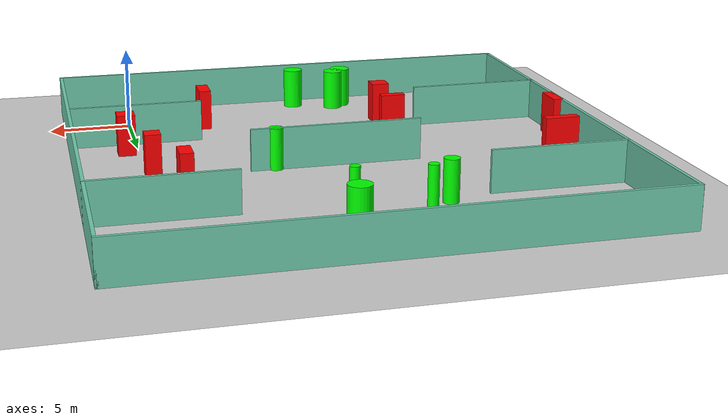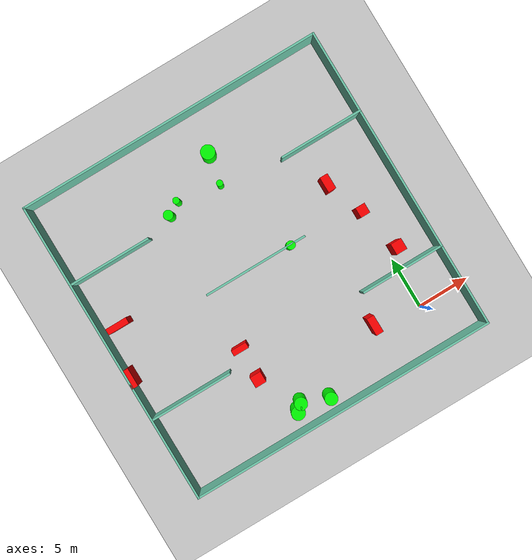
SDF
<sdf version="1.7">
 <world name="default">
  <light name="sun" type="directional">
   <pose>0 0 10 0 -0 0</pose>
   <diffuse>0.8 0.8 0.8 1</diffuse>
   <specular>0.2 0.2 0.2 1</specular>
   <attenuation>
    <range>1000</range>
    <constant>0.9</constant>
    <linear>0.01</linear>
    <quadratic>0.001</quadratic>
   </attenuation>
   <direction>-0.5 0.1 -0.9</direction>
   <spot><inner_angle>0</inner_angle><outer_angle>0</outer_angle><falloff>0</falloff></spot>
  </light>
  <model name="ground_plane">
   <static>1</static>
   <link name="link">
    <collision name="collision">
     <geometry><plane><normal>0 0 1</normal><size>100 100</size></plane></geometry>
     <surface>
      <contact><collide_bitmask>65535</collide_bitmask></contact>
      <friction><ode><mu>100</mu><mu2>50</mu2></ode></friction>
     </surface>
    </collision>
    <visual name="visual">
     <cast_shadows>0</cast_shadows>
     <geometry><plane><normal>0 0 1</normal><size>100 100</size></plane></geometry>
     <material>
      <script><uri>file://media/materials/scripts/gazebo.material</uri><name>Gazebo/Grey</name></script>
     </material>
    </visual>
   </link>
  </model>
  <gravity>0 0 -9.8</gravity>
  <magnetic_field>6e-06 2.3e-05 -4.2e-05</magnetic_field>
  <atmosphere type="adiabatic"/>
  <physics type="ode">
   <max_step_size>0.001</max_step_size>
   <real_time_factor>1</real_time_factor>
   <real_time_update_rate>1000</real_time_update_rate>
  </physics>
  <scene><ambient>0.4 0.4 0.4 1</ambient><background>0.7 0.7 0.7 1</background><shadows>1</shadows></scene>
  <spherical_coordinates>
   <surface_model>EARTH_WGS84</surface_model>
   <latitude_deg>0</latitude_deg>
   <longitude_deg>0</longitude_deg>
   <elevation>0</elevation>
   <heading_deg>0</heading_deg>
  </spherical_coordinates>
  <model name="my_base_walls">
   <link name="Wall_10">
    <collision name="Wall_10_Collision">
     <geometry><box><size>8.2 0.2 2.5</size></box></geometry>
     <pose>0 0 1.25 0 -0 0</pose>
    </collision>
    <visual name="Wall_10_Visual">
     <pose>0 0 1.25 0 -0 0</pose>
     <geometry><box><size>8.2 0.2 2.5</size></box></geometry>
     <material>
      <script><uri>file://media/materials/scripts/gazebo.material</uri><name>Gazebo/Grey</name></script>
      <ambient>0.435294 0.796078 0.67451 1</ambient>
     </material>
     <meta><layer>0</layer></meta>
    </visual>
    <pose>-11 -7 0 0 -0 0</pose>
   </link>
   <link name="Wall_12">
    <collision name="Wall_12_Collision">
     <geometry><box><size>8.2 0.2 2.5</size></box></geometry>
     <pose>0 0 1.25 0 -0 0</pose>
    </collision>
    <visual name="Wall_12_Visual">
     <pose>0 0 1.25 0 -0 0</pose>
     <geometry><box><size>8.2 0.2 2.5</size></box></geometry>
     <material>
      <script><uri>file://media/materials/scripts/gazebo.material</uri><name>Gazebo/Grey</name></script>
      <ambient>0.435294 0.796078 0.67451 1</ambient>
     </material>
     <meta><layer>0</layer></meta>
    </visual>
    <pose>-11 7 0 0 -0 0</pose>
   </link>
   <link name="Wall_14">
    <collision name="Wall_14_Collision">
     <geometry><box><size>8.2 0.2 2.5</size></box></geometry>
     <pose>0 0 1.25 0 -0 0</pose>
    </collision>
    <visual name="Wall_14_Visual">
     <pose>0 0 1.25 0 -0 0</pose>
     <geometry><box><size>8.2 0.2 2.5</size></box></geometry>
     <material>
      <script><uri>file://media/materials/scripts/gazebo.material</uri><name>Gazebo/Grey</name></script>
      <ambient>0.435294 0.796078 0.67451 1</ambient>
     </material>
     <meta><layer>0</layer></meta>
    </visual>
    <pose>11 7 0 0 -0 3.14159</pose>
   </link>
   <link name="Wall_16">
    <collision name="Wall_16_Collision">
     <geometry><box><size>10.2 0.2 2.5</size></box></geometry>
     <pose>0 0 1.25 0 -0 0</pose>
    </collision>
    <visual name="Wall_16_Visual">
     <pose>0 0 1.25 0 -0 0</pose>
     <geometry><box><size>10.2 0.2 2.5</size></box></geometry>
     <material>
      <script><uri>file://media/materials/scripts/gazebo.material</uri><name>Gazebo/Grey</name></script>
      <ambient>0.435294 0.796078 0.67451 1</ambient>
     </material>
     <meta><layer>0</layer></meta>
    </visual>
    <pose>0 0 0 0 -0 3.14159</pose>
   </link>
   <link name="Wall_2">
    <collision name="Wall_2_Collision">
     <geometry><box><size>30.2 0.2 2.5</size></box></geometry>
     <pose>0 0 1.25 0 -0 0</pose>
    </collision>
    <visual name="Wall_2_Visual">
     <pose>0 0 1.25 0 -0 0</pose>
     <geometry><box><size>30.2 0.2 2.5</size></box></geometry>
     <material>
      <script><uri>file://media/materials/scripts/gazebo.material</uri><name>Gazebo/Grey</name></script>
      <ambient>0.435294 0.796078 0.67451 1</ambient>
     </material>
     <meta><layer>0</layer></meta>
    </visual>
    <pose>0 -15 0 0 -0 3.14159</pose>
   </link>
   <link name="Wall_3">
    <collision name="Wall_3_Collision">
     <geometry><box><size>30.2 0.2 2.5</size></box></geometry>
     <pose>0 0 1.25 0 -0 0</pose>
    </collision>
    <visual name="Wall_3_Visual">
     <pose>0 0 1.25 0 -0 0</pose>
     <geometry><box><size>30.2 0.2 2.5</size></box></geometry>
     <material>
      <script><uri>file://media/materials/scripts/gazebo.material</uri><name>Gazebo/Grey</name></script>
      <ambient>0.435294 0.796078 0.67451 1</ambient>
     </material>
     <meta><layer>0</layer></meta>
    </visual>
    <pose>-15 0 0 0 -0 1.5708</pose>
   </link>
   <link name="Wall_4">
    <collision name="Wall_4_Collision">
     <geometry><box><size>30.2 0.2 2.5</size></box></geometry>
     <pose>0 0 1.25 0 -0 0</pose>
    </collision>
    <visual name="Wall_4_Visual">
     <pose>0 0 1.25 0 -0 0</pose>
     <geometry><box><size>30.2 0.2 2.5</size></box></geometry>
     <material>
      <script><uri>file://media/materials/scripts/gazebo.material</uri><name>Gazebo/Grey</name></script>
      <ambient>0.435294 0.796078 0.67451 1</ambient>
     </material>
     <meta><layer>0</layer></meta>
    </visual>
    <pose>0 15 0 0 -0 0</pose>
   </link>
   <link name="Wall_6">
    <collision name="Wall_6_Collision">
     <geometry><box><size>30.2 0.2 2.5</size></box></geometry>
     <pose>0 0 1.25 0 -0 0</pose>
    </collision>
    <visual name="Wall_6_Visual">
     <pose>0 0 1.25 0 -0 0</pose>
     <geometry><box><size>30.2 0.2 2.5</size></box></geometry>
     <material>
      <script><uri>file://media/materials/scripts/gazebo.material</uri><name>Gazebo/Grey</name></script>
      <ambient>0.435294 0.796078 0.67451 1</ambient>
     </material>
     <meta><layer>0</layer></meta>
    </visual>
    <pose>15 0 0 0 -0 1.5708</pose>
   </link>
   <link name="Wall_8">
    <collision name="Wall_8_Collision">
     <geometry><box><size>8.2 0.2 2.5</size></box></geometry>
     <pose>0 0 1.25 0 -0 0</pose>
    </collision>
    <visual name="Wall_8_Visual">
     <pose>0 0 1.25 0 -0 0</pose>
     <geometry><box><size>8.2 0.2 2.5</size></box></geometry>
     <material>
      <script><uri>file://media/materials/scripts/gazebo.material</uri><name>Gazebo/Grey</name></script>
      <ambient>0.435294 0.796078 0.67451 1</ambient>
     </material>
     <meta><layer>0</layer></meta>
    </visual>
    <pose>11 -7 0 0 -0 3.14159</pose>
   </link>
   <static>1</static>
   <pose>-11 11 0 0 -0 0</pose>
  </model>
  <model name="cylinder1">
   <static>1</static>
   <link name="link">
    <inertial>
     <mass>1</mass>
     <inertia><ixx>0.5</ixx><ixy>0</ixy><ixz>0</ixz><iyy>0.5</iyy><iyz>0</iyz><izz>1</izz></inertia>
    </inertial>
    <collision name="collision">
     <geometry><cylinder><radius>0.41598079937298826</radius><length>2.5</length></cylinder></geometry>
    </collision>
    <visual name="visual">
     <geometry><cylinder><radius>0.41598079937298826</radius><length>2.5</length></cylinder></geometry>
     <material>
      <ambient>0 1 0 1</ambient>
      <diffuse>0 1 0 1</diffuse>
      <specular>0.1 0.1 0.1 1</specular>
      <emissive>0 0 0 0</emissive>
     </material>
    </visual>
   </link>
   <pose>-7.403455175247668 10.949869166601871 1.25 0 0 0</pose>
  </model>
  <model name="cylinder2">
   <static>1</static>
   <link name="link">
    <inertial>
     <mass>1</mass>
     <inertia><ixx>0.5</ixx><ixy>0</ixy><ixz>0</ixz><iyy>0.5</iyy><iyz>0</iyz><izz>1</izz></inertia>
    </inertial>
    <collision name="collision">
     <geometry><cylinder><radius>0.6760343609185551</radius><length>2.5</length></cylinder></geometry>
    </collision>
    <visual name="visual">
     <geometry><cylinder><radius>0.6760343609185551</radius><length>2.5</length></cylinder></geometry>
     <material>
      <ambient>0 1 0 1</ambient>
      <diffuse>0 1 0 1</diffuse>
      <specular>0.1 0.1 0.1 1</specular>
      <emissive>0 0 0 0</emissive>
     </material>
    </visual>
   </link>
   <pose>-9.443908213531383 21.820369115546633 1.25 0 0 0</pose>
  </model>
  <model name="cylinder3">
   <static>1</static>
   <link name="link">
    <inertial>
     <mass>1</mass>
     <inertia><ixx>0.5</ixx><ixy>0</ixy><ixz>0</ixz><iyy>0.5</iyy><iyz>0</iyz><izz>1</izz></inertia>
    </inertial>
    <collision name="collision">
     <geometry><cylinder><radius>0.3160943435905168</radius><length>2.5</length></cylinder></geometry>
    </collision>
    <visual name="visual">
     <geometry><cylinder><radius>0.3160943435905168</radius><length>2.5</length></cylinder></geometry>
     <material>
      <ambient>0 1 0 1</ambient>
      <diffuse>0 1 0 1</diffuse>
      <specular>0.1 0.1 0.1 1</specular>
      <emissive>0 0 0 0</emissive>
     </material>
    </visual>
   </link>
   <pose>-14.079466898983826 19.595539021680207 1.25 0 0 0</pose>
  </model>
  <model name="cylinder4">
   <static>1</static>
   <link name="link">
    <inertial>
     <mass>1</mass>
     <inertia><ixx>0.5</ixx><ixy>0</ixy><ixz>0</ixz><iyy>0.5</iyy><iyz>0</iyz><izz>1</izz></inertia>
    </inertial>
    <collision name="collision">
     <geometry><cylinder><radius>0.6084176576229119</radius><length>2.5</length></cylinder></geometry>
    </collision>
    <visual name="visual">
     <geometry><cylinder><radius>0.6084176576229119</radius><length>2.5</length></cylinder></geometry>
     <material>
      <ambient>0 1 0 1</ambient>
      <diffuse>0 1 0 1</diffuse>
      <specular>0.1 0.1 0.1 1</specular>
      <emissive>0 0 0 0</emissive>
     </material>
    </visual>
   </link>
   <pose>-11.37827063852033 -2.5642698729217734 1.25 0 0 0</pose>
  </model>
  <model name="cylinder5">
   <static>1</static>
   <link name="link">
    <inertial>
     <mass>1</mass>
     <inertia><ixx>0.5</ixx><ixy>0</ixy><ixz>0</ixz><iyy>0.5</iyy><iyz>0</iyz><izz>1</izz></inertia>
    </inertial>
    <collision name="collision">
     <geometry><cylinder><radius>0.6067294721249394</radius><length>2.5</length></cylinder></geometry>
    </collision>
    <visual name="visual">
     <geometry><cylinder><radius>0.6067294721249394</radius><length>2.5</length></cylinder></geometry>
     <material>
      <ambient>0 1 0 1</ambient>
      <diffuse>0 1 0 1</diffuse>
      <specular>0.1 0.1 0.1 1</specular>
      <emissive>0 0 0 0</emissive>
     </material>
    </visual>
   </link>
   <pose>-13.914672285039275 -1.5613889865014876 1.25 0 0 0</pose>
  </model>
  <model name="cylinder6">
   <static>1</static>
   <link name="link">
    <inertial>
     <mass>1</mass>
     <inertia><ixx>0.5</ixx><ixy>0</ixy><ixz>0</ixz><iyy>0.5</iyy><iyz>0</iyz><izz>1</izz></inertia>
    </inertial>
    <collision name="collision">
     <geometry><cylinder><radius>0.4566232462948773</radius><length>2.5</length></cylinder></geometry>
    </collision>
    <visual name="visual">
     <geometry><cylinder><radius>0.4566232462948773</radius><length>2.5</length></cylinder></geometry>
     <material>
      <ambient>0 1 0 1</ambient>
      <diffuse>0 1 0 1</diffuse>
      <specular>0.1 0.1 0.1 1</specular>
      <emissive>0 0 0 0</emissive>
     </material>
    </visual>
   </link>
   <pose>-15.340080563107751 18.846528630483647 1.25 0 0 0</pose>
  </model>
  <model name="cylinder7">
   <static>1</static>
   <link name="link">
    <inertial>
     <mass>1</mass>
     <inertia><ixx>0.5</ixx><ixy>0</ixy><ixz>0</ixz><iyy>0.5</iyy><iyz>0</iyz><izz>1</izz></inertia>
    </inertial>
    <collision name="collision">
     <geometry><cylinder><radius>0.6433040443578908</radius><length>2.5</length></cylinder></geometry>
    </collision>
    <visual name="visual">
     <geometry><cylinder><radius>0.6433040443578908</radius><length>2.5</length></cylinder></geometry>
     <material>
      <ambient>0 1 0 1</ambient>
      <diffuse>0 1 0 1</diffuse>
      <specular>0.1 0.1 0.1 1</specular>
      <emissive>0 0 0 0</emissive>
     </material>
    </visual>
   </link>
   <pose>-14.53948432413356 -2.157375788278753 1.25 0 0 0</pose>
  </model>
  <model name="cylinder8">
   <static>1</static>
   <link name="link">
    <inertial>
     <mass>1</mass>
     <inertia><ixx>0.5</ixx><ixy>0</ixy><ixz>0</ixz><iyy>0.5</iyy><iyz>0</iyz><izz>1</izz></inertia>
    </inertial>
    <collision name="collision">
     <geometry><cylinder><radius>0.3003641144855578</radius><length>2.5</length></cylinder></geometry>
    </collision>
    <visual name="visual">
     <geometry><cylinder><radius>0.3003641144855578</radius><length>2.5</length></cylinder></geometry>
     <material>
      <ambient>0 1 0 1</ambient>
      <diffuse>0 1 0 1</diffuse>
      <specular>0.1 0.1 0.1 1</specular>
      <emissive>0 0 0 0</emissive>
     </material>
    </visual>
   </link>
   <pose>-9.96541986049711 18.923756487067738 1.25 0 0 0</pose>
  </model>
  <model name="box1">
   <static>1</static>
   <link name="link">
    <inertial>
     <mass>1</mass>
     <inertia><ixx>0.083</ixx><ixy>0</ixy><ixz>0</ixz><iyy>0.083</iyy><iyz>0</iyz><izz>0.083</izz></inertia>
    </inertial>
    <collision name="collision">
     <geometry><box><size>1.06714945178872 1.087575036457057 2.5</size></box></geometry>
    </collision>
    <visual name="visual">
     <geometry><box><size>1.06714945178872 1.087575036457057 2.5</size></box></geometry>
     <material>
      <ambient>1 0 0 1</ambient>
      <diffuse>1 0 0 1</diffuse>
      <specular>0.1 0.1 0.1 1</specular>
      <emissive>0 0 0 0</emissive>
     </material>
    </visual>
    <sensor name="my_contact" type="contact">
     <contact><collision>box_collision</collision><topic>__default_topic__</topic></contact>
    </sensor>
   </link>
   <pose>0.728894491435927 5.8916414888310165 1.25 0 0 0</pose>
  </model>
  <model name="box2">
   <static>1</static>
   <link name="link">
    <inertial>
     <mass>1</mass>
     <inertia><ixx>0.083</ixx><ixy>0</ixy><ixz>0</ixz><iyy>0.083</iyy><iyz>0</iyz><izz>0.083</izz></inertia>
    </inertial>
    <collision name="collision">
     <geometry><box><size>0.7851007242179557 1.5137267924541464 2.5</size></box></geometry>
    </collision>
    <visual name="visual">
     <geometry><box><size>0.7851007242179557 1.5137267924541464 2.5</size></box></geometry>
     <material>
      <ambient>1 0 0 1</ambient>
      <diffuse>1 0 0 1</diffuse>
      <specular>0.1 0.1 0.1 1</specular>
      <emissive>0 0 0 0</emissive>
     </material>
    </visual>
    <sensor name="my_contact" type="contact">
     <contact><collision>box_collision</collision><topic>__default_topic__</topic></contact>
    </sensor>
   </link>
   <pose>-1.7408937301750598 13.969665939643189 1.25 0 0 0</pose>
  </model>
  <model name="box3">
   <static>1</static>
   <link name="link">
    <inertial>
     <mass>1</mass>
     <inertia><ixx>0.083</ixx><ixy>0</ixy><ixz>0</ixz><iyy>0.083</iyy><iyz>0</iyz><izz>0.083</izz></inertia>
    </inertial>
    <collision name="collision">
     <geometry><box><size>0.7354536878827516 1.7044262042554417 2.5</size></box></geometry>
    </collision>
    <visual name="visual">
     <geometry><box><size>0.7354536878827516 1.7044262042554417 2.5</size></box></geometry>
     <material>
      <ambient>1 0 0 1</ambient>
      <diffuse>1 0 0 1</diffuse>
      <specular>0.1 0.1 0.1 1</specular>
      <emissive>0 0 0 0</emissive>
     </material>
    </visual>
    <sensor name="my_contact" type="contact">
     <contact><collision>box_collision</collision><topic>__default_topic__</topic></contact>
    </sensor>
   </link>
   <pose>-4.698576291751284 0.9981627166913309 1.25 0 0 0</pose>
  </model>
  <model name="box4">
   <static>1</static>
   <link name="link">
    <inertial>
     <mass>1</mass>
     <inertia><ixx>0.083</ixx><ixy>0</ixy><ixz>0</ixz><iyy>0.083</iyy><iyz>0</iyz><izz>0.083</izz></inertia>
    </inertial>
    <collision name="collision">
     <geometry><box><size>2.0986008965864267 0.5840423462291625 2.5</size></box></geometry>
    </collision>
    <visual name="visual">
     <geometry><box><size>2.0986008965864267 0.5840423462291625 2.5</size></box></geometry>
     <material>
      <ambient>1 0 0 1</ambient>
      <diffuse>1 0 0 1</diffuse>
      <specular>0.1 0.1 0.1 1</specular>
      <emissive>0 0 0 0</emissive>
     </material>
    </visual>
    <sensor name="my_contact" type="contact">
     <contact><collision>box_collision</collision><topic>__default_topic__</topic></contact>
    </sensor>
   </link>
   <pose>-24.292093093065564 12.755424669764519 1.25 0 0 0</pose>
  </model>
  <model name="box5">
   <static>1</static>
   <link name="link">
    <inertial>
     <mass>1</mass>
     <inertia><ixx>0.083</ixx><ixy>0</ixy><ixz>0</ixz><iyy>0.083</iyy><iyz>0</iyz><izz>0.083</izz></inertia>
    </inertial>
    <collision name="collision">
     <geometry><box><size>1.0867980327181792 1.056539268684965 2.5</size></box></geometry>
    </collision>
    <visual name="visual">
     <geometry><box><size>1.0867980327181792 1.056539268684965 2.5</size></box></geometry>
     <material>
      <ambient>1 0 0 1</ambient>
      <diffuse>1 0 0 1</diffuse>
      <specular>0.1 0.1 0.1 1</specular>
      <emissive>0 0 0 0</emissive>
     </material>
    </visual>
    <sensor name="my_contact" type="contact">
     <contact><collision>box_collision</collision><topic>__default_topic__</topic></contact>
    </sensor>
   </link>
   <pose>-16.061339980759584 2.243250905163457 1.25 0 0 0</pose>
  </model>
  <model name="box6">
   <static>1</static>
   <link name="link">
    <inertial>
     <mass>1</mass>
     <inertia><ixx>0.083</ixx><ixy>0</ixy><ixz>0</ixz><iyy>0.083</iyy><iyz>0</iyz><izz>0.083</izz></inertia>
    </inertial>
    <collision name="collision">
     <geometry><box><size>0.6041423129947832 1.8164336327941206 2.5</size></box></geometry>
    </collision>
    <visual name="visual">
     <geometry><box><size>0.6041423129947832 1.8164336327941206 2.5</size></box></geometry>
     <material>
      <ambient>1 0 0 1</ambient>
      <diffuse>1 0 0 1</diffuse>
      <specular>0.1 0.1 0.1 1</specular>
      <emissive>0 0 0 0</emissive>
     </material>
    </visual>
    <sensor name="my_contact" type="contact">
     <contact><collision>box_collision</collision><topic>__default_topic__</topic></contact>
    </sensor>
   </link>
   <pose>-25.73234982876929 8.172687105876427 1.25 0 0 0</pose>
  </model>
  <model name="box7">
   <static>1</static>
   <link name="link">
    <inertial>
     <mass>1</mass>
     <inertia><ixx>0.083</ixx><ixy>0</ixy><ixz>0</ixz><iyy>0.083</iyy><iyz>0</iyz><izz>0.083</izz></inertia>
    </inertial>
    <collision name="collision">
     <geometry><box><size>1.5100935007158396 0.5541187173783504 2.5</size></box></geometry>
    </collision>
    <visual name="visual">
     <geometry><box><size>1.5100935007158396 0.5541187173783504 2.5</size></box></geometry>
     <material>
      <ambient>1 0 0 1</ambient>
      <diffuse>1 0 0 1</diffuse>
      <specular>0.1 0.1 0.1 1</specular>
      <emissive>0 0 0 0</emissive>
     </material>
    </visual>
    <sensor name="my_contact" type="contact">
     <contact><collision>box_collision</collision><topic>__default_topic__</topic></contact>
    </sensor>
   </link>
   <pose>-16.049860211461763 5.384019644519029 1.25 0 0 0</pose>
  </model>
  <model name="box8">
   <static>1</static>
   <link name="link">
    <inertial>
     <mass>1</mass>
     <inertia><ixx>0.083</ixx><ixy>0</ixy><ixz>0</ixz><iyy>0.083</iyy><iyz>0</iyz><izz>0.083</izz></inertia>
    </inertial>
    <collision name="collision">
     <geometry><box><size>0.9315415759602882 0.9882281223654452 2.5</size></box></geometry>
    </collision>
    <visual name="visual">
     <geometry><box><size>0.9315415759602882 0.9882281223654452 2.5</size></box></geometry>
     <material>
      <ambient>1 0 0 1</ambient>
      <diffuse>1 0 0 1</diffuse>
      <specular>0.1 0.1 0.1 1</specular>
      <emissive>0 0 0 0</emissive>
     </material>
    </visual>
    <sensor name="my_contact" type="contact">
     <contact><collision>box_collision</collision><topic>__default_topic__</topic></contact>
    </sensor>
   </link>
   <pose>-0.3570035258955677 10.295887814915467 1.25 0 0 0</pose>
  </model>
 </world>
</sdf>
